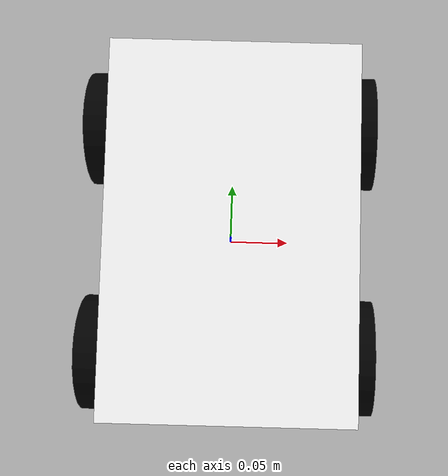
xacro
<?xml version="1.0"?>
<robot xmlns:xacro="http://www.ros.org/wiki/xacro" name="Robot1_xacro">
    <xacro:property name="length_wheel" value="0.05" />
    <xacro:property name="radius_wheel" value="0.05" />
    <link name="base_link">
        <visual>
            <geometry>
                <box size="0.2 .3 .1"/>
            </geometry>
            <origin rpy="0 0 0" xyz="0 0 0.05"/>
            <material name="white">
                <color rgba="1 1 1 1"/>
            </material>
        </visual>
        <collision>
            <geometry>
                <box size="0.2 .3 .1"/>
            </geometry>
            <origin rpy="0 0 0" xyz="0 0 0.05"/>
            <inertial>
                <mass value="20"/>
                <inertia ixx="1.0" ixy="0.0" ixz="0.0" iyy="1.0" iyz="0.0" izz="1.0"/>
            </inertial>
        </collision>
    </link>
    <link name="wheel_1">
        <visual>
            <geometry>
                <cylinder length="${length_wheel}" radius="${radius_wheel}"/>
            </geometry>
            <origin rpy="0 0 0" xyz="0 0 0" />
            <material name="black">
                <color rgba="0 0 0 1" />
            </material>
        </visual>
        <collision>
            <geometry>
                <cylinder length="${length_wheel}" radius="${radius_wheel}"/>
            </geometry>
            <origin rpy="0 0 0" xyz="0 0 0" />
            <inertial>
                <mass value="10"/>
                <inertia ixx="1.0" ixy="0.0" ixz="0.0" iyy="1.0" iyz="0.0" izz="1.0"/>
            </inertial>
        </collision>
    </link>
    <link name="wheel_2">
        <visual>
            <geometry>
                <cylinder length="${length_wheel}" radius="${radius_wheel}"/>
            </geometry>
            <origin rpy="0 0 0" xyz="0 0 0" />
            <material name="black" />
        </visual>
        <collision>
            <geometry>
                <cylinder length="${length_wheel}" radius="${radius_wheel}"/>
            </geometry>
            <origin rpy="0 0 0" xyz="0 0 0"/>
            <inertial>
                <mass value="10"/>
                <inertia ixx="1.0" ixy="0.0" ixz="0.0" iyy="1.0" iyz="0.0" izz="1.0"/>
            </inertial>
        </collision>
    </link>
    <link name="wheel_3">
        <visual>
            <geometry>
                <cylinder length="${length_wheel}" radius="${radius_wheel}"/>
            </geometry>
            <origin rpy="0 0 0" xyz="0 0 0" />
            <material name="black" />
        </visual>
        <collision>
            <geometry>
                <cylinder length="${length_wheel}" radius="${radius_wheel}"/>
            </geometry>
            <origin rpy="0 0 0" xyz="0 0 0" />
            <inertial>
                <mass value="10"/>
                <inertia ixx="1.0" ixy="0.0" ixz="0.0" iyy="1.0" iyz="0.0" izz="1.0"/>
            </inertial>
        </collision>
    </link>
    <link name="wheel_4">
        <visual>
            <geometry>
                <cylinder length="${length_wheel}" radius="${radius_wheel}"/>
            </geometry>
            <origin rpy="0 0 0" xyz="0 0 0" />
            <material name="black" />
        </visual>
        <collision>
            <geometry>
                <cylinder length="${length_wheel}" radius="${radius_wheel}"/>
            </geometry>
            <origin rpy="0 0 0" xyz="0 0 0" />
            <inertial>
                <mass value="10"/>
                <inertia ixx="1.0" ixy="0.0" ixz="0.0" iyy="1.0" iyz="0.0" izz="1.0"/>
            </inertial>
        </collision>
    </link>
    <joint name="base_to_wheel1" type="revolute">
        <parent link="base_link"/>
        <child link="wheel_1"/>
        <axis xyz="0 0 1" />
        <origin rpy="0 1.5 0" xyz="0.1 0.1 0" />
        <limit effort="1000.0" lower="-1.0" upper="1.0" velocity="0.5"/>
    </joint>
    <joint name="base_to_wheel2" type="revolute">
        <parent link="base_link"/>
        <child link="wheel_2"/>
        <axis xyz="0 0 1" />
        <origin rpy="0 1.5 0" xyz="-0.1 0.1 0" />
        <limit effort="1000.0" lower="-1.0" upper="1.0" velocity="0.5"/>
    </joint>
    <joint name="base_to_wheel3" type="revolute">
        <parent link="base_link"/>
        <child link="wheel_3"/>
        <axis xyz="0 0 1" />
        <origin rpy="0 1.5 0" xyz="0.1 -0.1 0" />
        <limit effort="1000.0" lower="-1.0" upper="1.0" velocity="0.5"/>
    </joint>
    <joint name="base_to_wheel4" type="revolute">
        <parent link="base_link"/>
        <child link="wheel_4"/>
        <axis xyz="0 0 1" />
        <origin rpy="0 1.5 0" xyz="-0.1 -0.1 0" />
        <limit effort="1000.0" lower="-1.0" upper="1.0" velocity="0.5"/>
    </joint>
</robot>
